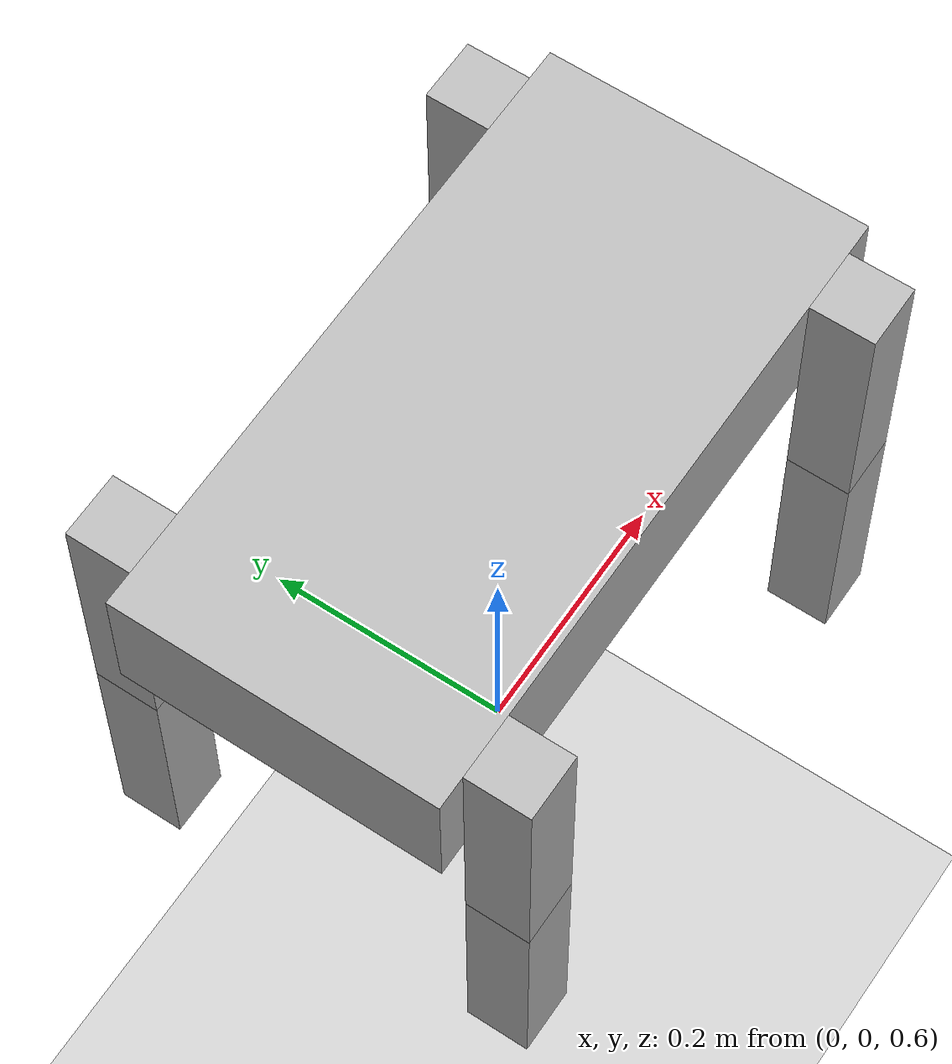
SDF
<?xml version="1.0" ?>
<sdf version="1.7">
  <world name="default">

    <!-- A global light source -->
    <include>
      <uri>model://sun</uri>
    </include>

    <!-- A ground plane -->
    <include>
      <uri>model://ground_plane</uri>
    </include>

    <!-- Pose -->
    <include>
      <uri>model://quadruped_robot</uri>
      <pose>0 0 1.0 0 0 0</pose>
    </include>
  </world>
</sdf>

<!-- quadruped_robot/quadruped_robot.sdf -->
<sdf version='1.7'>
  <model name='quadruped_robot'>
    <link name='base'>
      <inertial>
        <pose>0 0 0 0 -0 0</pose>
        <mass>1</mass>
        <inertia>
          <ixx>0</ixx>
          <ixy>0</ixy>
          <ixz>0</ixz>
          <iyy>0</iyy>
          <iyz>0</iyz>
          <izz>0</izz>
        </inertia>
      </inertial>
      <collision name='base_collision'>
        <pose>0 0 0 0 -0 0</pose>
        <geometry>
          <box>
            <size>0.5 0.25 0.1</size>
          </box>
        </geometry>
      </collision>
      <visual name='base_visual'>
        <pose>0 0 0 0 -0 0</pose>
        <geometry>
          <box>
            <size>0.5 0.25 0.1</size>
          </box>
        </geometry>
      </visual>
    </link>
    <joint name='up_bl' type='revolute'>
      <pose relative_to='base'>-0.2 0 0 0 -0 0</pose>
      <parent>base</parent>
      <child>up_leg_bl</child>
      <axis>
        <xyz>0 -1 0</xyz>
        <limit>
          <lower>-3.14</lower>
          <upper>3.14</upper>
          <effort>100</effort>
          <velocity>0.1</velocity>
        </limit>
        <dynamics>
          <damping>0.1</damping>
          <friction>0.1</friction>
          <spring_reference>0</spring_reference>
          <spring_stiffness>0</spring_stiffness>
        </dynamics>
      </axis>
    </joint>
    <link name='up_leg_bl'>
      <pose relative_to='up_bl'>0 0 0 0 -0 0</pose>
      <inertial>
        <pose>0 0 0 0 -0 0</pose>
        <mass>1</mass>
        <inertia>
          <ixx>0.00208333</ixx>
          <ixy>0</ixy>
          <ixz>0</ixz>
          <iyy>0.000208333</iyy>
          <iyz>0</iyz>
          <izz>0.001875</izz>
        </inertia>
      </inertial>
      <collision name='up_leg_bl_collision'>
        <pose>0 0.15 -0.05 0 -0 0</pose>
        <geometry>
          <box>
            <size>0.05 0.05 0.2</size>
          </box>
        </geometry>
      </collision>
      <visual name='up_leg_bl_visual'>
        <pose>0 0.15 -0.05 0 -0 0</pose>
        <geometry>
          <box>
            <size>0.05 0.05 0.2</size>
          </box>
        </geometry>
      </visual>
    </link>
    <joint name='bottom_bl' type='revolute'>
      <pose relative_to='up_leg_bl'>0 0.15 -0.15 0 -0 0</pose>
      <parent>up_leg_bl</parent>
      <child>bottom_leg_bl</child>
      <axis>
        <xyz>0 -1 0</xyz>
        <limit>
          <lower>-3.14</lower>
          <upper>3.14</upper>
          <effort>100</effort>
          <velocity>0.1</velocity>
        </limit>
        <dynamics>
          <damping>0.1</damping>
          <friction>0.1</friction>
          <spring_reference>0</spring_reference>
          <spring_stiffness>0</spring_stiffness>
        </dynamics>
      </axis>
    </joint>
    <link name='bottom_leg_bl'>
      <pose relative_to='bottom_bl'>0 0 0 0 -0 0</pose>
      <inertial>
        <pose>0 0 0 0 -0 0</pose>
        <mass>1</mass>
        <inertia>
          <ixx>0.000833333</ixx>
          <ixy>0</ixy>
          <ixz>0</ixz>
          <iyy>0.000833333</iyy>
          <iyz>0</iyz>
          <izz>0</izz>
        </inertia>
      </inertial>
      <collision name='bottom_leg_bl_collision'>
        <pose>0 0 -0.1 0 -0 0</pose>
        <geometry>
          <box>
            <size>0.05 0.05 0.2</size>
          </box>
        </geometry>
      </collision>
      <visual name='bottom_leg_bl_visual'>
        <pose>0 0 -0.1 0 -0 0</pose>
        <geometry>
          <box>
            <size>0.05 0.05 0.2</size>
          </box>
        </geometry>
      </visual>
    </link>
    <joint name='up_br' type='revolute'>
      <pose relative_to='base'>-0.2 0 0 0 -0 0</pose>
      <parent>base</parent>
      <child>up_leg_br</child>
      <axis>
        <xyz>0 -1 0</xyz>
        <limit>
          <lower>-3.14</lower>
          <upper>3.14</upper>
          <effort>100</effort>
          <velocity>0.1</velocity>
        </limit>
        <dynamics>
          <damping>0.1</damping>
          <friction>0.1</friction>
          <spring_reference>0</spring_reference>
          <spring_stiffness>0</spring_stiffness>
        </dynamics>
      </axis>
    </joint>
    <link name='up_leg_br'>
      <pose relative_to='up_br'>0 0 0 0 -0 0</pose>
      <inertial>
        <pose>0 0 0 0 -0 0</pose>
        <mass>1</mass>
        <inertia>
          <ixx>0.00208333</ixx>
          <ixy>0</ixy>
          <ixz>0</ixz>
          <iyy>0.000208333</iyy>
          <iyz>0</iyz>
          <izz>0.001875</izz>
        </inertia>
      </inertial>
      <collision name='up_leg_br_collision'>
        <pose>0 -0.15 -0.05 0 -0 0</pose>
        <geometry>
          <box>
            <size>0.05 0.05 0.2</size>
          </box>
        </geometry>
      </collision>
      <visual name='up_leg_br_visual'>
        <pose>0 -0.15 -0.05 0 -0 0</pose>
        <geometry>
          <box>
            <size>0.05 0.05 0.2</size>
          </box>
        </geometry>
      </visual>
    </link>
    <joint name='bottom_br' type='revolute'>
      <pose relative_to='up_leg_br'>0 -0.15 -0.15 0 -0 0</pose>
      <parent>up_leg_br</parent>
      <child>bottom_leg_br</child>
      <axis>
        <xyz>0 -1 0</xyz>
        <limit>
          <lower>-3.14</lower>
          <upper>3.14</upper>
          <effort>100</effort>
          <velocity>0.1</velocity>
        </limit>
        <dynamics>
          <damping>0.1</damping>
          <friction>0.1</friction>
          <spring_reference>0</spring_reference>
          <spring_stiffness>0</spring_stiffness>
        </dynamics>
      </axis>
    </joint>
    <link name='bottom_leg_br'>
      <pose relative_to='bottom_br'>0 0 0 0 -0 0</pose>
      <inertial>
        <pose>0 0 0 0 -0 0</pose>
        <mass>1</mass>
        <inertia>
          <ixx>0.000833333</ixx>
          <ixy>0</ixy>
          <ixz>0</ixz>
          <iyy>0.000833333</iyy>
          <iyz>0</iyz>
          <izz>0</izz>
        </inertia>
      </inertial>
      <collision name='bottom_leg_br_collision'>
        <pose>0 0 -0.1 0 -0 0</pose>
        <geometry>
          <box>
            <size>0.05 0.05 0.2</size>
          </box>
        </geometry>
      </collision>
      <visual name='bottom_leg_br_visual'>
        <pose>0 0 -0.1 0 -0 0</pose>
        <geometry>
          <box>
            <size>0.05 0.05 0.2</size>
          </box>
        </geometry>
      </visual>
    </link>
    <joint name='up_fl' type='revolute'>
      <pose relative_to='base'>0.2 0 0 0 -0 0</pose>
      <parent>base</parent>
      <child>up_leg_fl</child>
      <axis>
        <xyz>0 -1 0</xyz>
        <limit>
          <lower>-3.14</lower>
          <upper>3.14</upper>
          <effort>100</effort>
          <velocity>0.1</velocity>
        </limit>
        <dynamics>
          <damping>0.1</damping>
          <friction>0.1</friction>
          <spring_reference>0</spring_reference>
          <spring_stiffness>0</spring_stiffness>
        </dynamics>
      </axis>
    </joint>
    <link name='up_leg_fl'>
      <pose relative_to='up_fl'>0 0 0 0 -0 0</pose>
      <inertial>
        <pose>0 0 0 0 -0 0</pose>
        <mass>1</mass>
        <inertia>
          <ixx>0.00208333</ixx>
          <ixy>0</ixy>
          <ixz>0</ixz>
          <iyy>0.000208333</iyy>
          <iyz>0</iyz>
          <izz>0.001875</izz>
        </inertia>
      </inertial>
      <collision name='up_leg_fl_collision'>
        <pose>0 0.15 -0.05 0 -0 0</pose>
        <geometry>
          <box>
            <size>0.05 0.05 0.2</size>
          </box>
        </geometry>
      </collision>
      <visual name='up_leg_fl_visual'>
        <pose>0 0.15 -0.05 0 -0 0</pose>
        <geometry>
          <box>
            <size>0.05 0.05 0.2</size>
          </box>
        </geometry>
      </visual>
    </link>
    <joint name='bottom_fl' type='revolute'>
      <pose relative_to='up_leg_fl'>0 0.15 -0.15 0 -0 0</pose>
      <parent>up_leg_fl</parent>
      <child>bottom_leg_fl</child>
      <axis>
        <xyz>0 -1 0</xyz>
        <limit>
          <lower>-3.14</lower>
          <upper>3.14</upper>
          <effort>100</effort>
          <velocity>0.1</velocity>
        </limit>
        <dynamics>
          <damping>0.1</damping>
          <friction>0.1</friction>
          <spring_reference>0</spring_reference>
          <spring_stiffness>0</spring_stiffness>
        </dynamics>
      </axis>
    </joint>
    <link name='bottom_leg_fl'>
      <pose relative_to='bottom_fl'>0 0 0 0 -0 0</pose>
      <inertial>
        <pose>0 0 0 0 -0 0</pose>
        <mass>1</mass>
        <inertia>
          <ixx>0.000833333</ixx>
          <ixy>0</ixy>
          <ixz>0</ixz>
          <iyy>0.000833333</iyy>
          <iyz>0</iyz>
          <izz>0</izz>
        </inertia>
      </inertial>
      <collision name='bottom_leg_fl_collision'>
        <pose>0 0 -0.1 0 -0 0</pose>
        <geometry>
          <box>
            <size>0.05 0.05 0.2</size>
          </box>
        </geometry>
      </collision>
      <visual name='bottom_leg_fl_visual'>
        <pose>0 0 -0.1 0 -0 0</pose>
        <geometry>
          <box>
            <size>0.05 0.05 0.2</size>
          </box>
        </geometry>
      </visual>
    </link>
    <joint name='up_fr' type='revolute'>
      <pose relative_to='base'>0.2 0 0 0 -0 0</pose>
      <parent>base</parent>
      <child>up_leg_fr</child>
      <axis>
        <xyz>0 -1 0</xyz>
        <limit>
          <lower>-3.14</lower>
          <upper>3.14</upper>
          <effort>100</effort>
          <velocity>0.1</velocity>
        </limit>
        <dynamics>
          <damping>0.1</damping>
          <friction>0.1</friction>
          <spring_reference>0</spring_reference>
          <spring_stiffness>0</spring_stiffness>
        </dynamics>
      </axis>
    </joint>
    <link name='up_leg_fr'>
      <pose relative_to='up_fr'>0 0 0 0 -0 0</pose>
      <inertial>
        <pose>0 0 0 0 -0 0</pose>
        <mass>1</mass>
        <inertia>
          <ixx>0.00208333</ixx>
          <ixy>0</ixy>
          <ixz>0</ixz>
          <iyy>0.000208333</iyy>
          <iyz>0</iyz>
          <izz>0.001875</izz>
        </inertia>
      </inertial>
      <collision name='up_leg_fr_collision'>
        <pose>0 -0.15 -0.05 0 -0 0</pose>
        <geometry>
          <box>
            <size>0.05 0.05 0.2</size>
          </box>
        </geometry>
      </collision>
      <visual name='up_leg_fr_visual'>
        <pose>0 -0.15 -0.05 0 -0 0</pose>
        <geometry>
          <box>
            <size>0.05 0.05 0.2</size>
          </box>
        </geometry>
      </visual>
    </link>
    <joint name='bottom_fr' type='revolute'>
      <pose relative_to='up_leg_fr'>0 -0.15 -0.15 0 -0 0</pose>
      <parent>up_leg_fr</parent>
      <child>bottom_leg_fr</child>
      <axis>
        <xyz>0 -1 0</xyz>
        <limit>
          <lower>-3.14</lower>
          <upper>3.14</upper>
          <effort>100</effort>
          <velocity>0.1</velocity>
        </limit>
        <dynamics>
          <damping>0.1</damping>
          <friction>0.1</friction>
          <spring_reference>0</spring_reference>
          <spring_stiffness>0</spring_stiffness>
        </dynamics>
      </axis>
    </joint>
    <link name='bottom_leg_fr'>
      <pose relative_to='bottom_fr'>0 0 0 0 -0 0</pose>
      <inertial>
        <pose>0 0 0 0 -0 0</pose>
        <mass>1</mass>
        <inertia>
          <ixx>0.000833333</ixx>
          <ixy>0</ixy>
          <ixz>0</ixz>
          <iyy>0.000833333</iyy>
          <iyz>0</iyz>
          <izz>0</izz>
        </inertia>
      </inertial>
      <collision name='bottom_leg_fr_collision'>
        <pose>0 0 -0.1 0 -0 0</pose>
        <geometry>
          <box>
            <size>0.05 0.05 0.2</size>
          </box>
        </geometry>
      </collision>
      <visual name='bottom_leg_fr_visual'>
        <pose>0 0 -0.1 0 -0 0</pose>
        <geometry>
          <box>
            <size>0.05 0.05 0.2</size>
          </box>
        </geometry>
      </visual>
    </link>
  </model>
</sdf>
